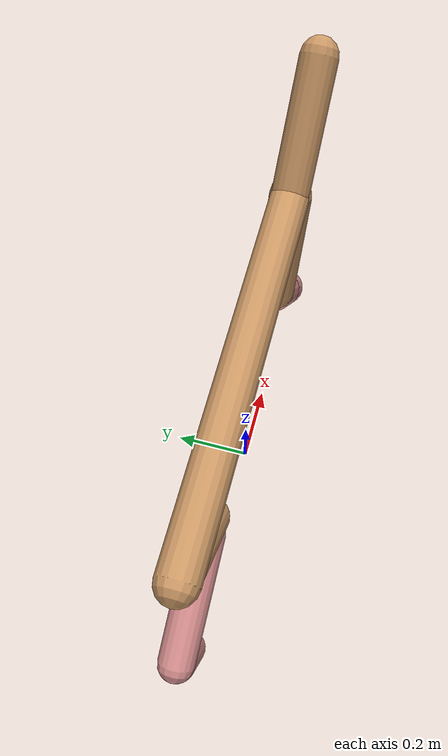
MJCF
<mujoco model="cheetah">
  <compiler angle="radian" coordinate="local" inertiafromgeom="true" settotalmass="14" />
  <default>
    <joint armature=".1" damping=".01" limited="true" solimplimit="0 .8 .03" solreflimit=".02 1" stiffness="8" />
    <geom conaffinity="0" condim="3" contype="1" friction="0.8 .1 .1" rgba="0.8 0.6 .4 1" solimp="0.0 0.8 0.01" solref="0.02 1" />
    <motor ctrllimited="true" ctrlrange="-1 1" />
  </default>
  <size nstack="300000" nuser_geom="1" />
  <option gravity="0 0 -9.81" timestep="0.01" />
  <worldbody>
    <body name="torso" pos="0.0 0.0 0.7044106794342944">
      <joint armature="0" axis="1 0 0" damping="0" limited="false" name="ignorex" pos="0 0 0" stiffness="0" type="slide" />
      <joint armature="0" axis="0 0 1" damping="0" limited="false" name="ignorez" pos="0 0 0" stiffness="0" type="slide" />
      <joint armature="0" axis="0 1 0" damping="0" limited="false" name="ignorey" pos="0 0 0" stiffness="0" type="hinge" />
      <geom fromto="-0.5 0.0 0.0 0.4007789828095307 0.0 0.0" name="torso" size="0.045614649799647446" type="capsule" />
      <geom axisangle="0 1 0 .87" name="head" pos="0.5007789828095307 0.0 0.1" size="0.04392201612934932 0.15" type="capsule" />

      <body name="bthigh" pos="-.5 0 0">
        <joint axis="0 1 0" damping="6" name="bthigh" pos="0 0 0" range="-.52 1.05" stiffness="240" type="hinge" />
        <geom axisangle="0 1 0 -3.8" name="bthigh" pos="0.1003304572995707 0.0 -0.1304295944894419" size="0.04272187328357842 0.14554199026946837" type="capsule" />
        <body name="bshin" pos="0.1606609145991414 0.0 -0.2508591889788838">
          <joint axis="0 1 0" damping="4.5" name="bshin" pos="0 0 0" range="-.785 .785" stiffness="180" type="hinge" />
          <geom axisangle="0 1 0 -2.03" name="bshin" pos="-0.1405014870699344 0.0 -0.0702507435349672" rgba="0.9 0.6 0.6 1" size="0.04272187328357842 0.1505606795891052" type="capsule" />
          <body name="bfoot" pos="-0.2810029741398688 0.0 -0.1405014870699344">
            <joint axis="0 1 0" damping="3" name="bfoot" pos="0 0 0" range="-.4 .785" stiffness="120" type="hinge" />
            <geom axisangle="0 1 0 -.27" name="bfoot" pos="0.030103816008180347 0.0 -0.09733567175978312" rgba="0.9 0.6 0.6 1" size="0.04272187328357842 0.0943513592091726" type="capsule" />
            <inertial mass="10" />
          </body>
        </body>
      </body>
      <body name="fthigh" pos="0.4007789828095307 0.0 0.0">
        <joint axis="0 1 0" damping="4.5" name="fthigh" pos="0 0 0" range="-1.5 0.8" stiffness="180" type="hinge" />
        <geom axisangle="0 1 0 .52" name="fthigh" pos="-0.06579064184848563 0.0 -0.11278395745454678" size="0.049399334326639385 0.12464596109265037" type="capsule" />
        <body name="fshin" pos="-0.13158128369697125 0.0 -0.22556791490909356">
          <joint axis="0 1 0" damping="3" name="fshin" pos="0 0 0" range="-1.2 1.1" stiffness="120" type="hinge" />
          <geom axisangle="0 1 0 -.6" name="fshin" pos="0.0611017417152605 0.0 -0.0846024116057453" rgba="0.9 0.6 0.6 1" size="0.049399334326639385 0.09934189380316495" type="capsule" />
          <body name="ffoot" pos="0.122203483430521 0.0 -0.1692048232114906">
            <joint axis="0 1 0" damping="1.5" name="ffoot" pos="0 0 0" range="-3.1 -0.3" stiffness="60" type="hinge" />
            <geom axisangle="0 1 0 -.6" name="ffoot" pos="0.04262236318038019 0.0 -0.06630145383614697" rgba="0.9 0.6 0.6 1" size="0.049399334326639385 0.0656031374171844" type="capsule" />
            <inertial mass="10" />
          </body>
        </body>
      </body>
    </body>
  </worldbody>
  <actuator>
    <motor gear="120" joint="bthigh" name="bthigh" />
    <motor gear="90" joint="bshin" name="bshin" />
    <motor gear="60" joint="bfoot" name="bfoot" />
    <motor gear="120" joint="fthigh" name="fthigh" />
    <motor gear="60" joint="fshin" name="fshin" />
    <motor gear="30" joint="ffoot" name="ffoot" />
  </actuator>
</mujoco>
